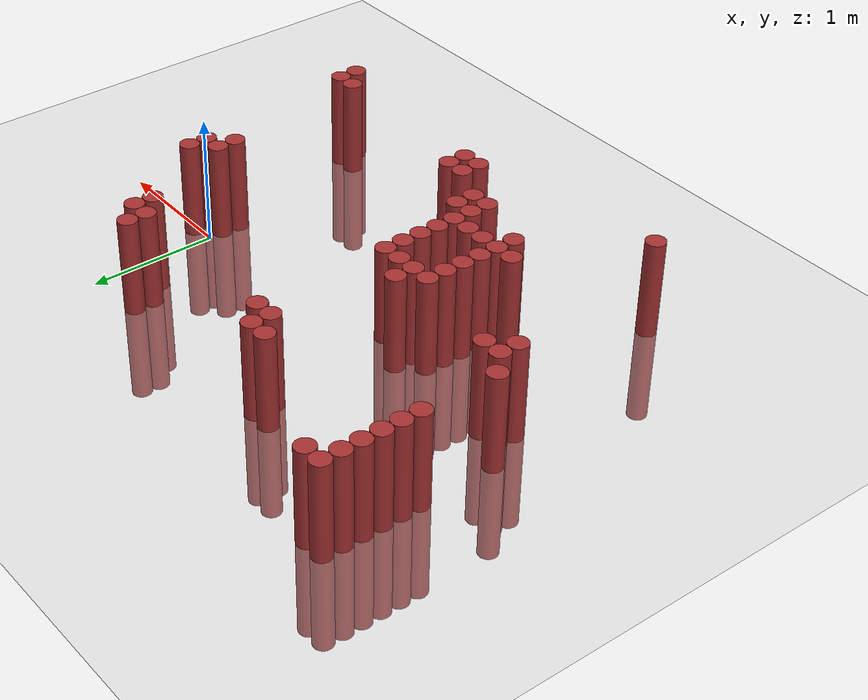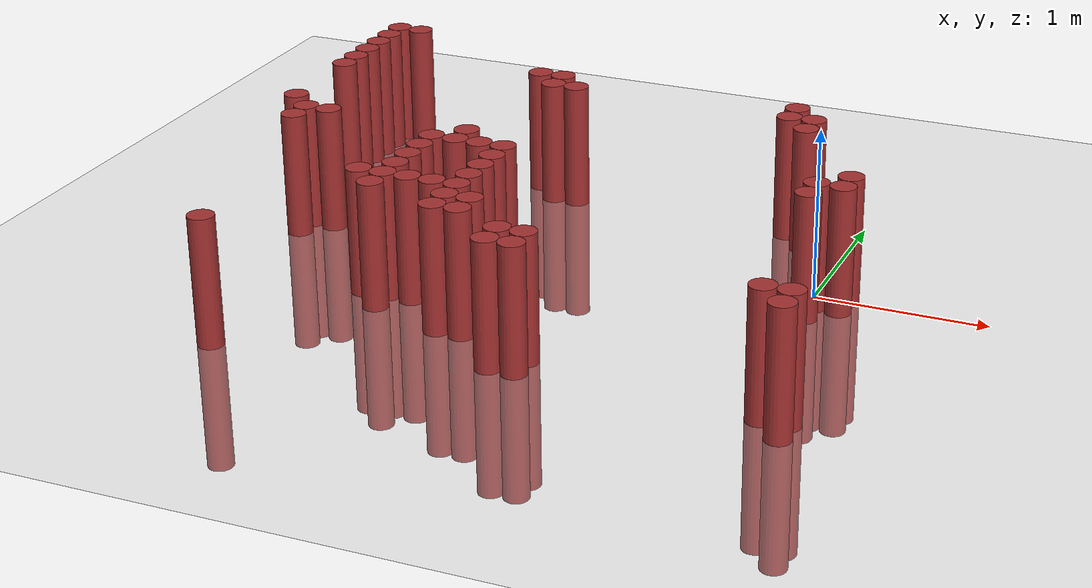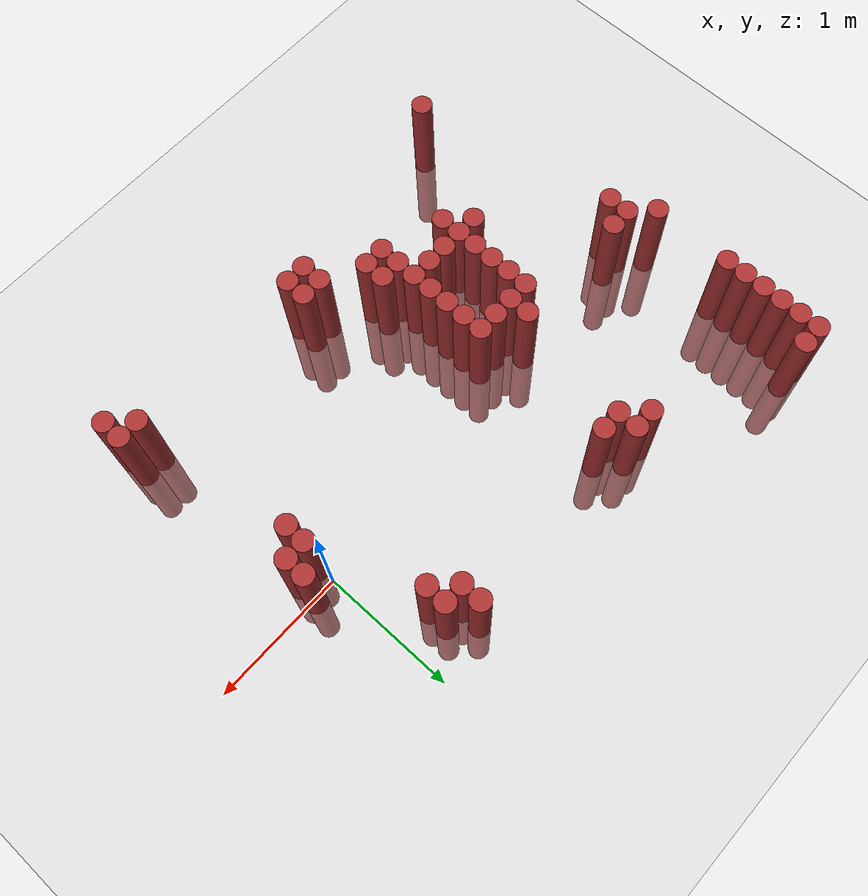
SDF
<sdf version="1.6">
 <world name="default">
  <model name="ground_plane">
   <static>1</static>
   <link name="link">
    <collision name="collision">
     <geometry><plane><normal>0 0 1</normal><size>100 100</size></plane></geometry>
     <surface><friction><ode><mu>100</mu><mu2>50</mu2></ode></friction></surface>
    </collision>
    <visual name="visual">
     <cast_shadows>0</cast_shadows>
     <geometry><plane><normal>0 0 1</normal><size>100 100</size></plane></geometry>
     <material>
      <script><uri>file://media/materials/scripts/gazebo.material</uri><name>Gazebo/Grey</name></script>
     </material>
    </visual>
   </link>
  </model>
  <model name="unit_cylinder_267">
   <static>1</static>
   <pose>-3.275000 0.025000 0.000000 0.000000 0.000000 0.000000</pose>
   <link name="link">
    <inertial>
     <mass>1</mass>
     <inertia><ixx>0.145833</ixx><ixy>0</ixy><ixz>0</ixz><iyy>0.145833</iyy><iyz>0</iyz><izz>0.125</izz></inertia>
    </inertial>
    <collision name="collision">
     <geometry><cylinder><radius>0.075000</radius><length>1.5</length></cylinder></geometry>
    </collision>
    <visual name="visual">
     <geometry><cylinder><radius>0.075000</radius><length>1.5</length></cylinder></geometry>
     <material>
      <ambient>0.648000 0.192000 0.192000 1</ambient>
      <diffuse>0.648000 0.192000 0.192000 1</diffuse>
     </material>
     <material>
      <script><name>Gazebo/Grey</name><uri>file://media/materials/scripts/gazebo.material</uri></script>
     </material>
    </visual>
   </link>
  </model>
  <model name="unit_cylinder_268">
   <static>1</static>
   <pose>-3.275000 0.625000 0.000000 0.000000 0.000000 0.000000</pose>
   <link name="link">
    <inertial>
     <mass>1</mass>
     <inertia><ixx>0.145833</ixx><ixy>0</ixy><ixz>0</ixz><iyy>0.145833</iyy><iyz>0</iyz><izz>0.125</izz></inertia>
    </inertial>
    <collision name="collision">
     <geometry><cylinder><radius>0.075000</radius><length>1.5</length></cylinder></geometry>
    </collision>
    <visual name="visual">
     <geometry><cylinder><radius>0.075000</radius><length>1.5</length></cylinder></geometry>
     <material>
      <ambient>0.648000 0.192000 0.192000 1</ambient>
      <diffuse>0.648000 0.192000 0.192000 1</diffuse>
     </material>
     <material>
      <script><name>Gazebo/Grey</name><uri>file://media/materials/scripts/gazebo.material</uri></script>
     </material>
    </visual>
   </link>
  </model>
  <model name="unit_cylinder_269">
   <static>1</static>
   <pose>-3.275000 0.775000 0.000000 0.000000 0.000000 0.000000</pose>
   <link name="link">
    <inertial>
     <mass>1</mass>
     <inertia><ixx>0.145833</ixx><ixy>0</ixy><ixz>0</ixz><iyy>0.145833</iyy><iyz>0</iyz><izz>0.125</izz></inertia>
    </inertial>
    <collision name="collision">
     <geometry><cylinder><radius>0.075000</radius><length>1.5</length></cylinder></geometry>
    </collision>
    <visual name="visual">
     <geometry><cylinder><radius>0.075000</radius><length>1.5</length></cylinder></geometry>
     <material>
      <ambient>0.648000 0.192000 0.192000 1</ambient>
      <diffuse>0.648000 0.192000 0.192000 1</diffuse>
     </material>
     <material>
      <script><name>Gazebo/Grey</name><uri>file://media/materials/scripts/gazebo.material</uri></script>
     </material>
    </visual>
   </link>
  </model>
  <model name="unit_cylinder_270">
   <static>1</static>
   <pose>-3.275000 0.925000 0.000000 0.000000 0.000000 0.000000</pose>
   <link name="link">
    <inertial>
     <mass>1</mass>
     <inertia><ixx>0.145833</ixx><ixy>0</ixy><ixz>0</ixz><iyy>0.145833</iyy><iyz>0</iyz><izz>0.125</izz></inertia>
    </inertial>
    <collision name="collision">
     <geometry><cylinder><radius>0.075000</radius><length>1.5</length></cylinder></geometry>
    </collision>
    <visual name="visual">
     <geometry><cylinder><radius>0.075000</radius><length>1.5</length></cylinder></geometry>
     <material>
      <ambient>0.648000 0.192000 0.192000 1</ambient>
      <diffuse>0.648000 0.192000 0.192000 1</diffuse>
     </material>
     <material>
      <script><name>Gazebo/Grey</name><uri>file://media/materials/scripts/gazebo.material</uri></script>
     </material>
    </visual>
   </link>
  </model>
  <model name="unit_cylinder_271">
   <static>1</static>
   <pose>-3.275000 1.075000 0.000000 0.000000 0.000000 0.000000</pose>
   <link name="link">
    <inertial>
     <mass>1</mass>
     <inertia><ixx>0.145833</ixx><ixy>0</ixy><ixz>0</ixz><iyy>0.145833</iyy><iyz>0</iyz><izz>0.125</izz></inertia>
    </inertial>
    <collision name="collision">
     <geometry><cylinder><radius>0.075000</radius><length>1.5</length></cylinder></geometry>
    </collision>
    <visual name="visual">
     <geometry><cylinder><radius>0.075000</radius><length>1.5</length></cylinder></geometry>
     <material>
      <ambient>0.648000 0.192000 0.192000 1</ambient>
      <diffuse>0.648000 0.192000 0.192000 1</diffuse>
     </material>
     <material>
      <script><name>Gazebo/Grey</name><uri>file://media/materials/scripts/gazebo.material</uri></script>
     </material>
    </visual>
   </link>
  </model>
  <model name="unit_cylinder_272">
   <static>1</static>
   <pose>-3.275000 1.225000 0.000000 0.000000 0.000000 0.000000</pose>
   <link name="link">
    <inertial>
     <mass>1</mass>
     <inertia><ixx>0.145833</ixx><ixy>0</ixy><ixz>0</ixz><iyy>0.145833</iyy><iyz>0</iyz><izz>0.125</izz></inertia>
    </inertial>
    <collision name="collision">
     <geometry><cylinder><radius>0.075000</radius><length>1.5</length></cylinder></geometry>
    </collision>
    <visual name="visual">
     <geometry><cylinder><radius>0.075000</radius><length>1.5</length></cylinder></geometry>
     <material>
      <ambient>0.648000 0.192000 0.192000 1</ambient>
      <diffuse>0.648000 0.192000 0.192000 1</diffuse>
     </material>
     <material>
      <script><name>Gazebo/Grey</name><uri>file://media/materials/scripts/gazebo.material</uri></script>
     </material>
    </visual>
   </link>
  </model>
  <model name="unit_cylinder_273">
   <static>1</static>
   <pose>-3.275000 1.375000 0.000000 0.000000 0.000000 0.000000</pose>
   <link name="link">
    <inertial>
     <mass>1</mass>
     <inertia><ixx>0.145833</ixx><ixy>0</ixy><ixz>0</ixz><iyy>0.145833</iyy><iyz>0</iyz><izz>0.125</izz></inertia>
    </inertial>
    <collision name="collision">
     <geometry><cylinder><radius>0.075000</radius><length>1.5</length></cylinder></geometry>
    </collision>
    <visual name="visual">
     <geometry><cylinder><radius>0.075000</radius><length>1.5</length></cylinder></geometry>
     <material>
      <ambient>0.648000 0.192000 0.192000 1</ambient>
      <diffuse>0.648000 0.192000 0.192000 1</diffuse>
     </material>
     <material>
      <script><name>Gazebo/Grey</name><uri>file://media/materials/scripts/gazebo.material</uri></script>
     </material>
    </visual>
   </link>
  </model>
  <model name="unit_cylinder_284">
   <static>1</static>
   <pose>-3.125000 -0.275000 0.000000 0.000000 0.000000 0.000000</pose>
   <link name="link">
    <inertial>
     <mass>1</mass>
     <inertia><ixx>0.145833</ixx><ixy>0</ixy><ixz>0</ixz><iyy>0.145833</iyy><iyz>0</iyz><izz>0.125</izz></inertia>
    </inertial>
    <collision name="collision">
     <geometry><cylinder><radius>0.075000</radius><length>1.5</length></cylinder></geometry>
    </collision>
    <visual name="visual">
     <geometry><cylinder><radius>0.075000</radius><length>1.5</length></cylinder></geometry>
     <material>
      <ambient>0.648000 0.192000 0.192000 1</ambient>
      <diffuse>0.648000 0.192000 0.192000 1</diffuse>
     </material>
     <material>
      <script><name>Gazebo/Grey</name><uri>file://media/materials/scripts/gazebo.material</uri></script>
     </material>
    </visual>
   </link>
  </model>
  <model name="unit_cylinder_285">
   <static>1</static>
   <pose>-3.125000 -0.125000 0.000000 0.000000 0.000000 0.000000</pose>
   <link name="link">
    <inertial>
     <mass>1</mass>
     <inertia><ixx>0.145833</ixx><ixy>0</ixy><ixz>0</ixz><iyy>0.145833</iyy><iyz>0</iyz><izz>0.125</izz></inertia>
    </inertial>
    <collision name="collision">
     <geometry><cylinder><radius>0.075000</radius><length>1.5</length></cylinder></geometry>
    </collision>
    <visual name="visual">
     <geometry><cylinder><radius>0.075000</radius><length>1.5</length></cylinder></geometry>
     <material>
      <ambient>0.648000 0.192000 0.192000 1</ambient>
      <diffuse>0.648000 0.192000 0.192000 1</diffuse>
     </material>
     <material>
      <script><name>Gazebo/Grey</name><uri>file://media/materials/scripts/gazebo.material</uri></script>
     </material>
    </visual>
   </link>
  </model>
  <model name="unit_cylinder_286">
   <static>1</static>
   <pose>-3.125000 1.375000 0.000000 0.000000 0.000000 0.000000</pose>
   <link name="link">
    <inertial>
     <mass>1</mass>
     <inertia><ixx>0.145833</ixx><ixy>0</ixy><ixz>0</ixz><iyy>0.145833</iyy><iyz>0</iyz><izz>0.125</izz></inertia>
    </inertial>
    <collision name="collision">
     <geometry><cylinder><radius>0.075000</radius><length>1.5</length></cylinder></geometry>
    </collision>
    <visual name="visual">
     <geometry><cylinder><radius>0.075000</radius><length>1.5</length></cylinder></geometry>
     <material>
      <ambient>0.648000 0.192000 0.192000 1</ambient>
      <diffuse>0.648000 0.192000 0.192000 1</diffuse>
     </material>
     <material>
      <script><name>Gazebo/Grey</name><uri>file://media/materials/scripts/gazebo.material</uri></script>
     </material>
    </visual>
   </link>
  </model>
  <model name="unit_cylinder_295">
   <static>1</static>
   <pose>-2.975000 -0.125000 0.000000 0.000000 0.000000 0.000000</pose>
   <link name="link">
    <inertial>
     <mass>1</mass>
     <inertia><ixx>0.145833</ixx><ixy>0</ixy><ixz>0</ixz><iyy>0.145833</iyy><iyz>0</iyz><izz>0.125</izz></inertia>
    </inertial>
    <collision name="collision">
     <geometry><cylinder><radius>0.075000</radius><length>1.5</length></cylinder></geometry>
    </collision>
    <visual name="visual">
     <geometry><cylinder><radius>0.075000</radius><length>1.5</length></cylinder></geometry>
     <material>
      <ambient>0.648000 0.192000 0.192000 1</ambient>
      <diffuse>0.648000 0.192000 0.192000 1</diffuse>
     </material>
     <material>
      <script><name>Gazebo/Grey</name><uri>file://media/materials/scripts/gazebo.material</uri></script>
     </material>
    </visual>
   </link>
  </model>
  <model name="unit_cylinder_300">
   <static>1</static>
   <pose>-2.825000 -1.775000 0.000000 0.000000 0.000000 0.000000</pose>
   <link name="link">
    <inertial>
     <mass>1</mass>
     <inertia><ixx>0.145833</ixx><ixy>0</ixy><ixz>0</ixz><iyy>0.145833</iyy><iyz>0</iyz><izz>0.125</izz></inertia>
    </inertial>
    <collision name="collision">
     <geometry><cylinder><radius>0.075000</radius><length>1.5</length></cylinder></geometry>
    </collision>
    <visual name="visual">
     <geometry><cylinder><radius>0.075000</radius><length>1.5</length></cylinder></geometry>
     <material>
      <ambient>0.648000 0.192000 0.192000 1</ambient>
      <diffuse>0.648000 0.192000 0.192000 1</diffuse>
     </material>
     <material>
      <script><name>Gazebo/Grey</name><uri>file://media/materials/scripts/gazebo.material</uri></script>
     </material>
    </visual>
   </link>
  </model>
  <model name="unit_cylinder_309">
   <static>1</static>
   <pose>-2.375000 -0.875000 0.000000 0.000000 0.000000 0.000000</pose>
   <link name="link">
    <inertial>
     <mass>1</mass>
     <inertia><ixx>0.145833</ixx><ixy>0</ixy><ixz>0</ixz><iyy>0.145833</iyy><iyz>0</iyz><izz>0.125</izz></inertia>
    </inertial>
    <collision name="collision">
     <geometry><cylinder><radius>0.075000</radius><length>1.5</length></cylinder></geometry>
    </collision>
    <visual name="visual">
     <geometry><cylinder><radius>0.075000</radius><length>1.5</length></cylinder></geometry>
     <material>
      <ambient>0.648000 0.192000 0.192000 1</ambient>
      <diffuse>0.648000 0.192000 0.192000 1</diffuse>
     </material>
     <material>
      <script><name>Gazebo/Grey</name><uri>file://media/materials/scripts/gazebo.material</uri></script>
     </material>
    </visual>
   </link>
  </model>
  <model name="unit_cylinder_314">
   <static>1</static>
   <pose>-2.225000 -1.025000 0.000000 0.000000 0.000000 0.000000</pose>
   <link name="link">
    <inertial>
     <mass>1</mass>
     <inertia><ixx>0.145833</ixx><ixy>0</ixy><ixz>0</ixz><iyy>0.145833</iyy><iyz>0</iyz><izz>0.125</izz></inertia>
    </inertial>
    <collision name="collision">
     <geometry><cylinder><radius>0.075000</radius><length>1.5</length></cylinder></geometry>
    </collision>
    <visual name="visual">
     <geometry><cylinder><radius>0.075000</radius><length>1.5</length></cylinder></geometry>
     <material>
      <ambient>0.648000 0.192000 0.192000 1</ambient>
      <diffuse>0.648000 0.192000 0.192000 1</diffuse>
     </material>
     <material>
      <script><name>Gazebo/Grey</name><uri>file://media/materials/scripts/gazebo.material</uri></script>
     </material>
    </visual>
   </link>
  </model>
  <model name="unit_cylinder_315">
   <static>1</static>
   <pose>-2.225000 -0.875000 0.000000 0.000000 0.000000 0.000000</pose>
   <link name="link">
    <inertial>
     <mass>1</mass>
     <inertia><ixx>0.145833</ixx><ixy>0</ixy><ixz>0</ixz><iyy>0.145833</iyy><iyz>0</iyz><izz>0.125</izz></inertia>
    </inertial>
    <collision name="collision">
     <geometry><cylinder><radius>0.075000</radius><length>1.5</length></cylinder></geometry>
    </collision>
    <visual name="visual">
     <geometry><cylinder><radius>0.075000</radius><length>1.5</length></cylinder></geometry>
     <material>
      <ambient>0.648000 0.192000 0.192000 1</ambient>
      <diffuse>0.648000 0.192000 0.192000 1</diffuse>
     </material>
     <material>
      <script><name>Gazebo/Grey</name><uri>file://media/materials/scripts/gazebo.material</uri></script>
     </material>
    </visual>
   </link>
  </model>
  <model name="unit_cylinder_316">
   <static>1</static>
   <pose>-2.225000 -0.725000 0.000000 0.000000 0.000000 0.000000</pose>
   <link name="link">
    <inertial>
     <mass>1</mass>
     <inertia><ixx>0.145833</ixx><ixy>0</ixy><ixz>0</ixz><iyy>0.145833</iyy><iyz>0</iyz><izz>0.125</izz></inertia>
    </inertial>
    <collision name="collision">
     <geometry><cylinder><radius>0.075000</radius><length>1.5</length></cylinder></geometry>
    </collision>
    <visual name="visual">
     <geometry><cylinder><radius>0.075000</radius><length>1.5</length></cylinder></geometry>
     <material>
      <ambient>0.648000 0.192000 0.192000 1</ambient>
      <diffuse>0.648000 0.192000 0.192000 1</diffuse>
     </material>
     <material>
      <script><name>Gazebo/Grey</name><uri>file://media/materials/scripts/gazebo.material</uri></script>
     </material>
    </visual>
   </link>
  </model>
  <model name="unit_cylinder_317">
   <static>1</static>
   <pose>-2.225000 -0.575000 0.000000 0.000000 0.000000 0.000000</pose>
   <link name="link">
    <inertial>
     <mass>1</mass>
     <inertia><ixx>0.145833</ixx><ixy>0</ixy><ixz>0</ixz><iyy>0.145833</iyy><iyz>0</iyz><izz>0.125</izz></inertia>
    </inertial>
    <collision name="collision">
     <geometry><cylinder><radius>0.075000</radius><length>1.5</length></cylinder></geometry>
    </collision>
    <visual name="visual">
     <geometry><cylinder><radius>0.075000</radius><length>1.5</length></cylinder></geometry>
     <material>
      <ambient>0.648000 0.192000 0.192000 1</ambient>
      <diffuse>0.648000 0.192000 0.192000 1</diffuse>
     </material>
     <material>
      <script><name>Gazebo/Grey</name><uri>file://media/materials/scripts/gazebo.material</uri></script>
     </material>
    </visual>
   </link>
  </model>
  <model name="unit_cylinder_318">
   <static>1</static>
   <pose>-2.225000 -0.425000 0.000000 0.000000 0.000000 0.000000</pose>
   <link name="link">
    <inertial>
     <mass>1</mass>
     <inertia><ixx>0.145833</ixx><ixy>0</ixy><ixz>0</ixz><iyy>0.145833</iyy><iyz>0</iyz><izz>0.125</izz></inertia>
    </inertial>
    <collision name="collision">
     <geometry><cylinder><radius>0.075000</radius><length>1.5</length></cylinder></geometry>
    </collision>
    <visual name="visual">
     <geometry><cylinder><radius>0.075000</radius><length>1.5</length></cylinder></geometry>
     <material>
      <ambient>0.648000 0.192000 0.192000 1</ambient>
      <diffuse>0.648000 0.192000 0.192000 1</diffuse>
     </material>
     <material>
      <script><name>Gazebo/Grey</name><uri>file://media/materials/scripts/gazebo.material</uri></script>
     </material>
    </visual>
   </link>
  </model>
  <model name="unit_cylinder_319">
   <static>1</static>
   <pose>-2.225000 -0.275000 0.000000 0.000000 0.000000 0.000000</pose>
   <link name="link">
    <inertial>
     <mass>1</mass>
     <inertia><ixx>0.145833</ixx><ixy>0</ixy><ixz>0</ixz><iyy>0.145833</iyy><iyz>0</iyz><izz>0.125</izz></inertia>
    </inertial>
    <collision name="collision">
     <geometry><cylinder><radius>0.075000</radius><length>1.5</length></cylinder></geometry>
    </collision>
    <visual name="visual">
     <geometry><cylinder><radius>0.075000</radius><length>1.5</length></cylinder></geometry>
     <material>
      <ambient>0.648000 0.192000 0.192000 1</ambient>
      <diffuse>0.648000 0.192000 0.192000 1</diffuse>
     </material>
     <material>
      <script><name>Gazebo/Grey</name><uri>file://media/materials/scripts/gazebo.material</uri></script>
     </material>
    </visual>
   </link>
  </model>
  <model name="unit_cylinder_323">
   <static>1</static>
   <pose>-2.075000 -0.875000 0.000000 0.000000 0.000000 0.000000</pose>
   <link name="link">
    <inertial>
     <mass>1</mass>
     <inertia><ixx>0.145833</ixx><ixy>0</ixy><ixz>0</ixz><iyy>0.145833</iyy><iyz>0</iyz><izz>0.125</izz></inertia>
    </inertial>
    <collision name="collision">
     <geometry><cylinder><radius>0.075000</radius><length>1.5</length></cylinder></geometry>
    </collision>
    <visual name="visual">
     <geometry><cylinder><radius>0.075000</radius><length>1.5</length></cylinder></geometry>
     <material>
      <ambient>0.648000 0.192000 0.192000 1</ambient>
      <diffuse>0.648000 0.192000 0.192000 1</diffuse>
     </material>
     <material>
      <script><name>Gazebo/Grey</name><uri>file://media/materials/scripts/gazebo.material</uri></script>
     </material>
    </visual>
   </link>
  </model>
  <model name="unit_cylinder_324">
   <static>1</static>
   <pose>-2.075000 -0.275000 0.000000 0.000000 0.000000 0.000000</pose>
   <link name="link">
    <inertial>
     <mass>1</mass>
     <inertia><ixx>0.145833</ixx><ixy>0</ixy><ixz>0</ixz><iyy>0.145833</iyy><iyz>0</iyz><izz>0.125</izz></inertia>
    </inertial>
    <collision name="collision">
     <geometry><cylinder><radius>0.075000</radius><length>1.5</length></cylinder></geometry>
    </collision>
    <visual name="visual">
     <geometry><cylinder><radius>0.075000</radius><length>1.5</length></cylinder></geometry>
     <material>
      <ambient>0.648000 0.192000 0.192000 1</ambient>
      <diffuse>0.648000 0.192000 0.192000 1</diffuse>
     </material>
     <material>
      <script><name>Gazebo/Grey</name><uri>file://media/materials/scripts/gazebo.material</uri></script>
     </material>
    </visual>
   </link>
  </model>
  <model name="unit_cylinder_325">
   <static>1</static>
   <pose>-2.075000 -0.125000 0.000000 0.000000 0.000000 0.000000</pose>
   <link name="link">
    <inertial>
     <mass>1</mass>
     <inertia><ixx>0.145833</ixx><ixy>0</ixy><ixz>0</ixz><iyy>0.145833</iyy><iyz>0</iyz><izz>0.125</izz></inertia>
    </inertial>
    <collision name="collision">
     <geometry><cylinder><radius>0.075000</radius><length>1.5</length></cylinder></geometry>
    </collision>
    <visual name="visual">
     <geometry><cylinder><radius>0.075000</radius><length>1.5</length></cylinder></geometry>
     <material>
      <ambient>0.648000 0.192000 0.192000 1</ambient>
      <diffuse>0.648000 0.192000 0.192000 1</diffuse>
     </material>
     <material>
      <script><name>Gazebo/Grey</name><uri>file://media/materials/scripts/gazebo.material</uri></script>
     </material>
    </visual>
   </link>
  </model>
  <model name="unit_cylinder_326">
   <static>1</static>
   <pose>-2.075000 0.925000 0.000000 0.000000 0.000000 0.000000</pose>
   <link name="link">
    <inertial>
     <mass>1</mass>
     <inertia><ixx>0.145833</ixx><ixy>0</ixy><ixz>0</ixz><iyy>0.145833</iyy><iyz>0</iyz><izz>0.125</izz></inertia>
    </inertial>
    <collision name="collision">
     <geometry><cylinder><radius>0.075000</radius><length>1.5</length></cylinder></geometry>
    </collision>
    <visual name="visual">
     <geometry><cylinder><radius>0.075000</radius><length>1.5</length></cylinder></geometry>
     <material>
      <ambient>0.648000 0.192000 0.192000 1</ambient>
      <diffuse>0.648000 0.192000 0.192000 1</diffuse>
     </material>
     <material>
      <script><name>Gazebo/Grey</name><uri>file://media/materials/scripts/gazebo.material</uri></script>
     </material>
    </visual>
   </link>
  </model>
  <model name="unit_cylinder_332">
   <static>1</static>
   <pose>-1.925000 -0.875000 0.000000 0.000000 0.000000 0.000000</pose>
   <link name="link">
    <inertial>
     <mass>1</mass>
     <inertia><ixx>0.145833</ixx><ixy>0</ixy><ixz>0</ixz><iyy>0.145833</iyy><iyz>0</iyz><izz>0.125</izz></inertia>
    </inertial>
    <collision name="collision">
     <geometry><cylinder><radius>0.075000</radius><length>1.5</length></cylinder></geometry>
    </collision>
    <visual name="visual">
     <geometry><cylinder><radius>0.075000</radius><length>1.5</length></cylinder></geometry>
     <material>
      <ambient>0.648000 0.192000 0.192000 1</ambient>
      <diffuse>0.648000 0.192000 0.192000 1</diffuse>
     </material>
     <material>
      <script><name>Gazebo/Grey</name><uri>file://media/materials/scripts/gazebo.material</uri></script>
     </material>
    </visual>
   </link>
  </model>
  <model name="unit_cylinder_333">
   <static>1</static>
   <pose>-1.925000 -0.275000 0.000000 0.000000 0.000000 0.000000</pose>
   <link name="link">
    <inertial>
     <mass>1</mass>
     <inertia><ixx>0.145833</ixx><ixy>0</ixy><ixz>0</ixz><iyy>0.145833</iyy><iyz>0</iyz><izz>0.125</izz></inertia>
    </inertial>
    <collision name="collision">
     <geometry><cylinder><radius>0.075000</radius><length>1.5</length></cylinder></geometry>
    </collision>
    <visual name="visual">
     <geometry><cylinder><radius>0.075000</radius><length>1.5</length></cylinder></geometry>
     <material>
      <ambient>0.648000 0.192000 0.192000 1</ambient>
      <diffuse>0.648000 0.192000 0.192000 1</diffuse>
     </material>
     <material>
      <script><name>Gazebo/Grey</name><uri>file://media/materials/scripts/gazebo.material</uri></script>
     </material>
    </visual>
   </link>
  </model>
  <model name="unit_cylinder_334">
   <static>1</static>
   <pose>-1.925000 0.775000 0.000000 0.000000 0.000000 0.000000</pose>
   <link name="link">
    <inertial>
     <mass>1</mass>
     <inertia><ixx>0.145833</ixx><ixy>0</ixy><ixz>0</ixz><iyy>0.145833</iyy><iyz>0</iyz><izz>0.125</izz></inertia>
    </inertial>
    <collision name="collision">
     <geometry><cylinder><radius>0.075000</radius><length>1.5</length></cylinder></geometry>
    </collision>
    <visual name="visual">
     <geometry><cylinder><radius>0.075000</radius><length>1.5</length></cylinder></geometry>
     <material>
      <ambient>0.648000 0.192000 0.192000 1</ambient>
      <diffuse>0.648000 0.192000 0.192000 1</diffuse>
     </material>
     <material>
      <script><name>Gazebo/Grey</name><uri>file://media/materials/scripts/gazebo.material</uri></script>
     </material>
    </visual>
   </link>
  </model>
  <model name="unit_cylinder_335">
   <static>1</static>
   <pose>-1.925000 0.925000 0.000000 0.000000 0.000000 0.000000</pose>
   <link name="link">
    <inertial>
     <mass>1</mass>
     <inertia><ixx>0.145833</ixx><ixy>0</ixy><ixz>0</ixz><iyy>0.145833</iyy><iyz>0</iyz><izz>0.125</izz></inertia>
    </inertial>
    <collision name="collision">
     <geometry><cylinder><radius>0.075000</radius><length>1.5</length></cylinder></geometry>
    </collision>
    <visual name="visual">
     <geometry><cylinder><radius>0.075000</radius><length>1.5</length></cylinder></geometry>
     <material>
      <ambient>0.648000 0.192000 0.192000 1</ambient>
      <diffuse>0.648000 0.192000 0.192000 1</diffuse>
     </material>
     <material>
      <script><name>Gazebo/Grey</name><uri>file://media/materials/scripts/gazebo.material</uri></script>
     </material>
    </visual>
   </link>
  </model>
  <model name="unit_cylinder_343">
   <static>1</static>
   <pose>-1.775000 -1.175000 0.000000 0.000000 0.000000 0.000000</pose>
   <link name="link">
    <inertial>
     <mass>1</mass>
     <inertia><ixx>0.145833</ixx><ixy>0</ixy><ixz>0</ixz><iyy>0.145833</iyy><iyz>0</iyz><izz>0.125</izz></inertia>
    </inertial>
    <collision name="collision">
     <geometry><cylinder><radius>0.075000</radius><length>1.5</length></cylinder></geometry>
    </collision>
    <visual name="visual">
     <geometry><cylinder><radius>0.075000</radius><length>1.5</length></cylinder></geometry>
     <material>
      <ambient>0.648000 0.192000 0.192000 1</ambient>
      <diffuse>0.648000 0.192000 0.192000 1</diffuse>
     </material>
     <material>
      <script><name>Gazebo/Grey</name><uri>file://media/materials/scripts/gazebo.material</uri></script>
     </material>
    </visual>
   </link>
  </model>
  <model name="unit_cylinder_344">
   <static>1</static>
   <pose>-1.775000 -1.025000 0.000000 0.000000 0.000000 0.000000</pose>
   <link name="link">
    <inertial>
     <mass>1</mass>
     <inertia><ixx>0.145833</ixx><ixy>0</ixy><ixz>0</ixz><iyy>0.145833</iyy><iyz>0</iyz><izz>0.125</izz></inertia>
    </inertial>
    <collision name="collision">
     <geometry><cylinder><radius>0.075000</radius><length>1.5</length></cylinder></geometry>
    </collision>
    <visual name="visual">
     <geometry><cylinder><radius>0.075000</radius><length>1.5</length></cylinder></geometry>
     <material>
      <ambient>0.648000 0.192000 0.192000 1</ambient>
      <diffuse>0.648000 0.192000 0.192000 1</diffuse>
     </material>
     <material>
      <script><name>Gazebo/Grey</name><uri>file://media/materials/scripts/gazebo.material</uri></script>
     </material>
    </visual>
   </link>
  </model>
  <model name="unit_cylinder_345">
   <static>1</static>
   <pose>-1.775000 -0.875000 0.000000 0.000000 0.000000 0.000000</pose>
   <link name="link">
    <inertial>
     <mass>1</mass>
     <inertia><ixx>0.145833</ixx><ixy>0</ixy><ixz>0</ixz><iyy>0.145833</iyy><iyz>0</iyz><izz>0.125</izz></inertia>
    </inertial>
    <collision name="collision">
     <geometry><cylinder><radius>0.075000</radius><length>1.5</length></cylinder></geometry>
    </collision>
    <visual name="visual">
     <geometry><cylinder><radius>0.075000</radius><length>1.5</length></cylinder></geometry>
     <material>
      <ambient>0.648000 0.192000 0.192000 1</ambient>
      <diffuse>0.648000 0.192000 0.192000 1</diffuse>
     </material>
     <material>
      <script><name>Gazebo/Grey</name><uri>file://media/materials/scripts/gazebo.material</uri></script>
     </material>
    </visual>
   </link>
  </model>
  <model name="unit_cylinder_346">
   <static>1</static>
   <pose>-1.775000 -0.725000 0.000000 0.000000 0.000000 0.000000</pose>
   <link name="link">
    <inertial>
     <mass>1</mass>
     <inertia><ixx>0.145833</ixx><ixy>0</ixy><ixz>0</ixz><iyy>0.145833</iyy><iyz>0</iyz><izz>0.125</izz></inertia>
    </inertial>
    <collision name="collision">
     <geometry><cylinder><radius>0.075000</radius><length>1.5</length></cylinder></geometry>
    </collision>
    <visual name="visual">
     <geometry><cylinder><radius>0.075000</radius><length>1.5</length></cylinder></geometry>
     <material>
      <ambient>0.648000 0.192000 0.192000 1</ambient>
      <diffuse>0.648000 0.192000 0.192000 1</diffuse>
     </material>
     <material>
      <script><name>Gazebo/Grey</name><uri>file://media/materials/scripts/gazebo.material</uri></script>
     </material>
    </visual>
   </link>
  </model>
  <model name="unit_cylinder_347">
   <static>1</static>
   <pose>-1.775000 -0.575000 0.000000 0.000000 0.000000 0.000000</pose>
   <link name="link">
    <inertial>
     <mass>1</mass>
     <inertia><ixx>0.145833</ixx><ixy>0</ixy><ixz>0</ixz><iyy>0.145833</iyy><iyz>0</iyz><izz>0.125</izz></inertia>
    </inertial>
    <collision name="collision">
     <geometry><cylinder><radius>0.075000</radius><length>1.5</length></cylinder></geometry>
    </collision>
    <visual name="visual">
     <geometry><cylinder><radius>0.075000</radius><length>1.5</length></cylinder></geometry>
     <material>
      <ambient>0.648000 0.192000 0.192000 1</ambient>
      <diffuse>0.648000 0.192000 0.192000 1</diffuse>
     </material>
     <material>
      <script><name>Gazebo/Grey</name><uri>file://media/materials/scripts/gazebo.material</uri></script>
     </material>
    </visual>
   </link>
  </model>
  <model name="unit_cylinder_348">
   <static>1</static>
   <pose>-1.775000 -0.425000 0.000000 0.000000 0.000000 0.000000</pose>
   <link name="link">
    <inertial>
     <mass>1</mass>
     <inertia><ixx>0.145833</ixx><ixy>0</ixy><ixz>0</ixz><iyy>0.145833</iyy><iyz>0</iyz><izz>0.125</izz></inertia>
    </inertial>
    <collision name="collision">
     <geometry><cylinder><radius>0.075000</radius><length>1.5</length></cylinder></geometry>
    </collision>
    <visual name="visual">
     <geometry><cylinder><radius>0.075000</radius><length>1.5</length></cylinder></geometry>
     <material>
      <ambient>0.648000 0.192000 0.192000 1</ambient>
      <diffuse>0.648000 0.192000 0.192000 1</diffuse>
     </material>
     <material>
      <script><name>Gazebo/Grey</name><uri>file://media/materials/scripts/gazebo.material</uri></script>
     </material>
    </visual>
   </link>
  </model>
  <model name="unit_cylinder_349">
   <static>1</static>
   <pose>-1.775000 -0.275000 0.000000 0.000000 0.000000 0.000000</pose>
   <link name="link">
    <inertial>
     <mass>1</mass>
     <inertia><ixx>0.145833</ixx><ixy>0</ixy><ixz>0</ixz><iyy>0.145833</iyy><iyz>0</iyz><izz>0.125</izz></inertia>
    </inertial>
    <collision name="collision">
     <geometry><cylinder><radius>0.075000</radius><length>1.5</length></cylinder></geometry>
    </collision>
    <visual name="visual">
     <geometry><cylinder><radius>0.075000</radius><length>1.5</length></cylinder></geometry>
     <material>
      <ambient>0.648000 0.192000 0.192000 1</ambient>
      <diffuse>0.648000 0.192000 0.192000 1</diffuse>
     </material>
     <material>
      <script><name>Gazebo/Grey</name><uri>file://media/materials/scripts/gazebo.material</uri></script>
     </material>
    </visual>
   </link>
  </model>
  <model name="unit_cylinder_350">
   <static>1</static>
   <pose>-1.775000 0.775000 0.000000 0.000000 0.000000 0.000000</pose>
   <link name="link">
    <inertial>
     <mass>1</mass>
     <inertia><ixx>0.145833</ixx><ixy>0</ixy><ixz>0</ixz><iyy>0.145833</iyy><iyz>0</iyz><izz>0.125</izz></inertia>
    </inertial>
    <collision name="collision">
     <geometry><cylinder><radius>0.075000</radius><length>1.5</length></cylinder></geometry>
    </collision>
    <visual name="visual">
     <geometry><cylinder><radius>0.075000</radius><length>1.5</length></cylinder></geometry>
     <material>
      <ambient>0.648000 0.192000 0.192000 1</ambient>
      <diffuse>0.648000 0.192000 0.192000 1</diffuse>
     </material>
     <material>
      <script><name>Gazebo/Grey</name><uri>file://media/materials/scripts/gazebo.material</uri></script>
     </material>
    </visual>
   </link>
  </model>
  <model name="unit_cylinder_358">
   <static>1</static>
   <pose>-1.625000 -1.175000 0.000000 0.000000 0.000000 0.000000</pose>
   <link name="link">
    <inertial>
     <mass>1</mass>
     <inertia><ixx>0.145833</ixx><ixy>0</ixy><ixz>0</ixz><iyy>0.145833</iyy><iyz>0</iyz><izz>0.125</izz></inertia>
    </inertial>
    <collision name="collision">
     <geometry><cylinder><radius>0.075000</radius><length>1.5</length></cylinder></geometry>
    </collision>
    <visual name="visual">
     <geometry><cylinder><radius>0.075000</radius><length>1.5</length></cylinder></geometry>
     <material>
      <ambient>0.648000 0.192000 0.192000 1</ambient>
      <diffuse>0.648000 0.192000 0.192000 1</diffuse>
     </material>
     <material>
      <script><name>Gazebo/Grey</name><uri>file://media/materials/scripts/gazebo.material</uri></script>
     </material>
    </visual>
   </link>
  </model>
  <model name="unit_cylinder_359">
   <static>1</static>
   <pose>-1.625000 -1.025000 0.000000 0.000000 0.000000 0.000000</pose>
   <link name="link">
    <inertial>
     <mass>1</mass>
     <inertia><ixx>0.145833</ixx><ixy>0</ixy><ixz>0</ixz><iyy>0.145833</iyy><iyz>0</iyz><izz>0.125</izz></inertia>
    </inertial>
    <collision name="collision">
     <geometry><cylinder><radius>0.075000</radius><length>1.5</length></cylinder></geometry>
    </collision>
    <visual name="visual">
     <geometry><cylinder><radius>0.075000</radius><length>1.5</length></cylinder></geometry>
     <material>
      <ambient>0.648000 0.192000 0.192000 1</ambient>
      <diffuse>0.648000 0.192000 0.192000 1</diffuse>
     </material>
     <material>
      <script><name>Gazebo/Grey</name><uri>file://media/materials/scripts/gazebo.material</uri></script>
     </material>
    </visual>
   </link>
  </model>
  <model name="unit_cylinder_371">
   <static>1</static>
   <pose>-1.325000 -1.475000 0.000000 0.000000 0.000000 0.000000</pose>
   <link name="link">
    <inertial>
     <mass>1</mass>
     <inertia><ixx>0.145833</ixx><ixy>0</ixy><ixz>0</ixz><iyy>0.145833</iyy><iyz>0</iyz><izz>0.125</izz></inertia>
    </inertial>
    <collision name="collision">
     <geometry><cylinder><radius>0.075000</radius><length>1.5</length></cylinder></geometry>
    </collision>
    <visual name="visual">
     <geometry><cylinder><radius>0.075000</radius><length>1.5</length></cylinder></geometry>
     <material>
      <ambient>0.648000 0.192000 0.192000 1</ambient>
      <diffuse>0.648000 0.192000 0.192000 1</diffuse>
     </material>
     <material>
      <script><name>Gazebo/Grey</name><uri>file://media/materials/scripts/gazebo.material</uri></script>
     </material>
    </visual>
   </link>
  </model>
  <model name="unit_cylinder_372">
   <static>1</static>
   <pose>-1.325000 -1.325000 0.000000 0.000000 0.000000 0.000000</pose>
   <link name="link">
    <inertial>
     <mass>1</mass>
     <inertia><ixx>0.145833</ixx><ixy>0</ixy><ixz>0</ixz><iyy>0.145833</iyy><iyz>0</iyz><izz>0.125</izz></inertia>
    </inertial>
    <collision name="collision">
     <geometry><cylinder><radius>0.075000</radius><length>1.5</length></cylinder></geometry>
    </collision>
    <visual name="visual">
     <geometry><cylinder><radius>0.075000</radius><length>1.5</length></cylinder></geometry>
     <material>
      <ambient>0.648000 0.192000 0.192000 1</ambient>
      <diffuse>0.648000 0.192000 0.192000 1</diffuse>
     </material>
     <material>
      <script><name>Gazebo/Grey</name><uri>file://media/materials/scripts/gazebo.material</uri></script>
     </material>
    </visual>
   </link>
  </model>
  <model name="unit_cylinder_374">
   <static>1</static>
   <pose>-1.175000 -1.475000 0.000000 0.000000 0.000000 0.000000</pose>
   <link name="link">
    <inertial>
     <mass>1</mass>
     <inertia><ixx>0.145833</ixx><ixy>0</ixy><ixz>0</ixz><iyy>0.145833</iyy><iyz>0</iyz><izz>0.125</izz></inertia>
    </inertial>
    <collision name="collision">
     <geometry><cylinder><radius>0.075000</radius><length>1.5</length></cylinder></geometry>
    </collision>
    <visual name="visual">
     <geometry><cylinder><radius>0.075000</radius><length>1.5</length></cylinder></geometry>
     <material>
      <ambient>0.648000 0.192000 0.192000 1</ambient>
      <diffuse>0.648000 0.192000 0.192000 1</diffuse>
     </material>
     <material>
      <script><name>Gazebo/Grey</name><uri>file://media/materials/scripts/gazebo.material</uri></script>
     </material>
    </visual>
   </link>
  </model>
  <model name="unit_cylinder_375">
   <static>1</static>
   <pose>-1.175000 -1.325000 0.000000 0.000000 0.000000 0.000000</pose>
   <link name="link">
    <inertial>
     <mass>1</mass>
     <inertia><ixx>0.145833</ixx><ixy>0</ixy><ixz>0</ixz><iyy>0.145833</iyy><iyz>0</iyz><izz>0.125</izz></inertia>
    </inertial>
    <collision name="collision">
     <geometry><cylinder><radius>0.075000</radius><length>1.5</length></cylinder></geometry>
    </collision>
    <visual name="visual">
     <geometry><cylinder><radius>0.075000</radius><length>1.5</length></cylinder></geometry>
     <material>
      <ambient>0.648000 0.192000 0.192000 1</ambient>
      <diffuse>0.648000 0.192000 0.192000 1</diffuse>
     </material>
     <material>
      <script><name>Gazebo/Grey</name><uri>file://media/materials/scripts/gazebo.material</uri></script>
     </material>
    </visual>
   </link>
  </model>
  <model name="unit_cylinder_383">
   <static>1</static>
   <pose>-0.425000 0.775000 0.000000 0.000000 0.000000 0.000000</pose>
   <link name="link">
    <inertial>
     <mass>1</mass>
     <inertia><ixx>0.145833</ixx><ixy>0</ixy><ixz>0</ixz><iyy>0.145833</iyy><iyz>0</iyz><izz>0.125</izz></inertia>
    </inertial>
    <collision name="collision">
     <geometry><cylinder><radius>0.075000</radius><length>1.5</length></cylinder></geometry>
    </collision>
    <visual name="visual">
     <geometry><cylinder><radius>0.075000</radius><length>1.5</length></cylinder></geometry>
     <material>
      <ambient>0.648000 0.192000 0.192000 1</ambient>
      <diffuse>0.648000 0.192000 0.192000 1</diffuse>
     </material>
     <material>
      <script><name>Gazebo/Grey</name><uri>file://media/materials/scripts/gazebo.material</uri></script>
     </material>
    </visual>
   </link>
  </model>
  <model name="unit_cylinder_384">
   <static>1</static>
   <pose>-0.425000 0.925000 0.000000 0.000000 0.000000 0.000000</pose>
   <link name="link">
    <inertial>
     <mass>1</mass>
     <inertia><ixx>0.145833</ixx><ixy>0</ixy><ixz>0</ixz><iyy>0.145833</iyy><iyz>0</iyz><izz>0.125</izz></inertia>
    </inertial>
    <collision name="collision">
     <geometry><cylinder><radius>0.075000</radius><length>1.5</length></cylinder></geometry>
    </collision>
    <visual name="visual">
     <geometry><cylinder><radius>0.075000</radius><length>1.5</length></cylinder></geometry>
     <material>
      <ambient>0.648000 0.192000 0.192000 1</ambient>
      <diffuse>0.648000 0.192000 0.192000 1</diffuse>
     </material>
     <material>
      <script><name>Gazebo/Grey</name><uri>file://media/materials/scripts/gazebo.material</uri></script>
     </material>
    </visual>
   </link>
  </model>
  <model name="unit_cylinder_387">
   <static>1</static>
   <pose>-0.275000 0.625000 0.000000 0.000000 0.000000 0.000000</pose>
   <link name="link">
    <inertial>
     <mass>1</mass>
     <inertia><ixx>0.145833</ixx><ixy>0</ixy><ixz>0</ixz><iyy>0.145833</iyy><iyz>0</iyz><izz>0.125</izz></inertia>
    </inertial>
    <collision name="collision">
     <geometry><cylinder><radius>0.075000</radius><length>1.5</length></cylinder></geometry>
    </collision>
    <visual name="visual">
     <geometry><cylinder><radius>0.075000</radius><length>1.5</length></cylinder></geometry>
     <material>
      <ambient>0.648000 0.192000 0.192000 1</ambient>
      <diffuse>0.648000 0.192000 0.192000 1</diffuse>
     </material>
     <material>
      <script><name>Gazebo/Grey</name><uri>file://media/materials/scripts/gazebo.material</uri></script>
     </material>
    </visual>
   </link>
  </model>
  <model name="unit_cylinder_388">
   <static>1</static>
   <pose>-0.275000 0.775000 0.000000 0.000000 0.000000 0.000000</pose>
   <link name="link">
    <inertial>
     <mass>1</mass>
     <inertia><ixx>0.145833</ixx><ixy>0</ixy><ixz>0</ixz><iyy>0.145833</iyy><iyz>0</iyz><izz>0.125</izz></inertia>
    </inertial>
    <collision name="collision">
     <geometry><cylinder><radius>0.075000</radius><length>1.5</length></cylinder></geometry>
    </collision>
    <visual name="visual">
     <geometry><cylinder><radius>0.075000</radius><length>1.5</length></cylinder></geometry>
     <material>
      <ambient>0.648000 0.192000 0.192000 1</ambient>
      <diffuse>0.648000 0.192000 0.192000 1</diffuse>
     </material>
     <material>
      <script><name>Gazebo/Grey</name><uri>file://media/materials/scripts/gazebo.material</uri></script>
     </material>
    </visual>
   </link>
  </model>
  <model name="unit_cylinder_390">
   <static>1</static>
   <pose>0.025000 -0.275000 0.000000 0.000000 0.000000 0.000000</pose>
   <link name="link">
    <inertial>
     <mass>1</mass>
     <inertia><ixx>0.145833</ixx><ixy>0</ixy><ixz>0</ixz><iyy>0.145833</iyy><iyz>0</iyz><izz>0.125</izz></inertia>
    </inertial>
    <collision name="collision">
     <geometry><cylinder><radius>0.075000</radius><length>1.5</length></cylinder></geometry>
    </collision>
    <visual name="visual">
     <geometry><cylinder><radius>0.075000</radius><length>1.5</length></cylinder></geometry>
     <material>
      <ambient>0.648000 0.192000 0.192000 1</ambient>
      <diffuse>0.648000 0.192000 0.192000 1</diffuse>
     </material>
     <material>
      <script><name>Gazebo/Grey</name><uri>file://media/materials/scripts/gazebo.material</uri></script>
     </material>
    </visual>
   </link>
  </model>
  <model name="unit_cylinder_391">
   <static>1</static>
   <pose>0.025000 -0.125000 0.000000 0.000000 0.000000 0.000000</pose>
   <link name="link">
    <inertial>
     <mass>1</mass>
     <inertia><ixx>0.145833</ixx><ixy>0</ixy><ixz>0</ixz><iyy>0.145833</iyy><iyz>0</iyz><izz>0.125</izz></inertia>
    </inertial>
    <collision name="collision">
     <geometry><cylinder><radius>0.075000</radius><length>1.5</length></cylinder></geometry>
    </collision>
    <visual name="visual">
     <geometry><cylinder><radius>0.075000</radius><length>1.5</length></cylinder></geometry>
     <material>
      <ambient>0.648000 0.192000 0.192000 1</ambient>
      <diffuse>0.648000 0.192000 0.192000 1</diffuse>
     </material>
     <material>
      <script><name>Gazebo/Grey</name><uri>file://media/materials/scripts/gazebo.material</uri></script>
     </material>
    </visual>
   </link>
  </model>
  <model name="unit_cylinder_392">
   <static>1</static>
   <pose>0.175000 -1.475000 0.000000 0.000000 0.000000 0.000000</pose>
   <link name="link">
    <inertial>
     <mass>1</mass>
     <inertia><ixx>0.145833</ixx><ixy>0</ixy><ixz>0</ixz><iyy>0.145833</iyy><iyz>0</iyz><izz>0.125</izz></inertia>
    </inertial>
    <collision name="collision">
     <geometry><cylinder><radius>0.075000</radius><length>1.5</length></cylinder></geometry>
    </collision>
    <visual name="visual">
     <geometry><cylinder><radius>0.075000</radius><length>1.5</length></cylinder></geometry>
     <material>
      <ambient>0.648000 0.192000 0.192000 1</ambient>
      <diffuse>0.648000 0.192000 0.192000 1</diffuse>
     </material>
     <material>
      <script><name>Gazebo/Grey</name><uri>file://media/materials/scripts/gazebo.material</uri></script>
     </material>
    </visual>
   </link>
  </model>
  <model name="unit_cylinder_393">
   <static>1</static>
   <pose>0.175000 -0.125000 0.000000 0.000000 0.000000 0.000000</pose>
   <link name="link">
    <inertial>
     <mass>1</mass>
     <inertia><ixx>0.145833</ixx><ixy>0</ixy><ixz>0</ixz><iyy>0.145833</iyy><iyz>0</iyz><izz>0.125</izz></inertia>
    </inertial>
    <collision name="collision">
     <geometry><cylinder><radius>0.075000</radius><length>1.5</length></cylinder></geometry>
    </collision>
    <visual name="visual">
     <geometry><cylinder><radius>0.075000</radius><length>1.5</length></cylinder></geometry>
     <material>
      <ambient>0.648000 0.192000 0.192000 1</ambient>
      <diffuse>0.648000 0.192000 0.192000 1</diffuse>
     </material>
     <material>
      <script><name>Gazebo/Grey</name><uri>file://media/materials/scripts/gazebo.material</uri></script>
     </material>
    </visual>
   </link>
  </model>
  <model name="unit_cylinder_394">
   <static>1</static>
   <pose>0.175000 0.025000 0.000000 0.000000 0.000000 0.000000</pose>
   <link name="link">
    <inertial>
     <mass>1</mass>
     <inertia><ixx>0.145833</ixx><ixy>0</ixy><ixz>0</ixz><iyy>0.145833</iyy><iyz>0</iyz><izz>0.125</izz></inertia>
    </inertial>
    <collision name="collision">
     <geometry><cylinder><radius>0.075000</radius><length>1.5</length></cylinder></geometry>
    </collision>
    <visual name="visual">
     <geometry><cylinder><radius>0.075000</radius><length>1.5</length></cylinder></geometry>
     <material>
      <ambient>0.648000 0.192000 0.192000 1</ambient>
      <diffuse>0.648000 0.192000 0.192000 1</diffuse>
     </material>
     <material>
      <script><name>Gazebo/Grey</name><uri>file://media/materials/scripts/gazebo.material</uri></script>
     </material>
    </visual>
   </link>
  </model>
  <model name="unit_cylinder_395">
   <static>1</static>
   <pose>0.325000 -1.625000 0.000000 0.000000 0.000000 0.000000</pose>
   <link name="link">
    <inertial>
     <mass>1</mass>
     <inertia><ixx>0.145833</ixx><ixy>0</ixy><ixz>0</ixz><iyy>0.145833</iyy><iyz>0</iyz><izz>0.125</izz></inertia>
    </inertial>
    <collision name="collision">
     <geometry><cylinder><radius>0.075000</radius><length>1.5</length></cylinder></geometry>
    </collision>
    <visual name="visual">
     <geometry><cylinder><radius>0.075000</radius><length>1.5</length></cylinder></geometry>
     <material>
      <ambient>0.648000 0.192000 0.192000 1</ambient>
      <diffuse>0.648000 0.192000 0.192000 1</diffuse>
     </material>
     <material>
      <script><name>Gazebo/Grey</name><uri>file://media/materials/scripts/gazebo.material</uri></script>
     </material>
    </visual>
   </link>
  </model>
  <model name="unit_cylinder_396">
   <static>1</static>
   <pose>0.325000 -1.475000 0.000000 0.000000 0.000000 0.000000</pose>
   <link name="link">
    <inertial>
     <mass>1</mass>
     <inertia><ixx>0.145833</ixx><ixy>0</ixy><ixz>0</ixz><iyy>0.145833</iyy><iyz>0</iyz><izz>0.125</izz></inertia>
    </inertial>
    <collision name="collision">
     <geometry><cylinder><radius>0.075000</radius><length>1.5</length></cylinder></geometry>
    </collision>
    <visual name="visual">
     <geometry><cylinder><radius>0.075000</radius><length>1.5</length></cylinder></geometry>
     <material>
      <ambient>0.648000 0.192000 0.192000 1</ambient>
      <diffuse>0.648000 0.192000 0.192000 1</diffuse>
     </material>
     <material>
      <script><name>Gazebo/Grey</name><uri>file://media/materials/scripts/gazebo.material</uri></script>
     </material>
    </visual>
   </link>
  </model>
 </world>
</sdf>
